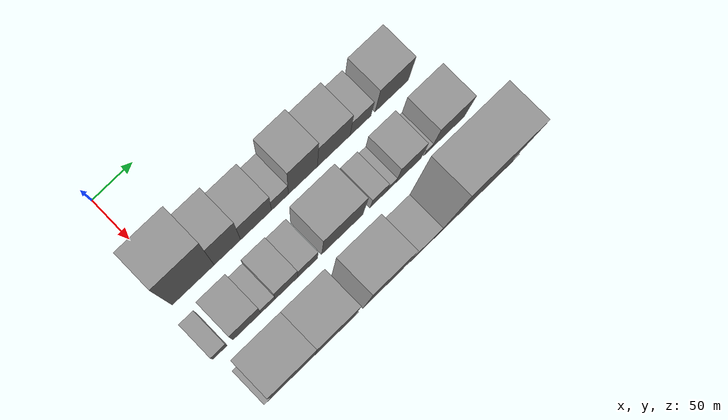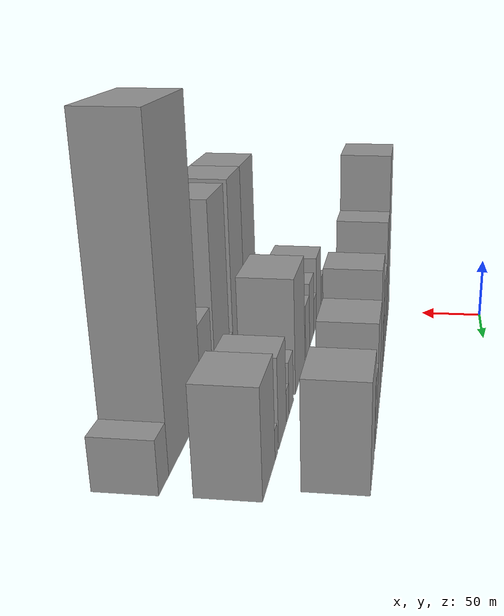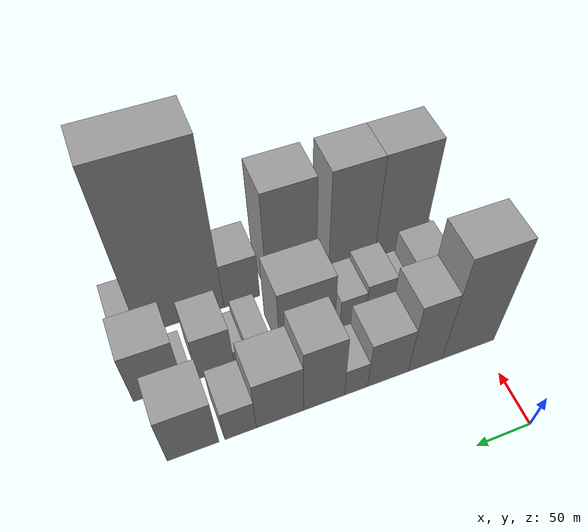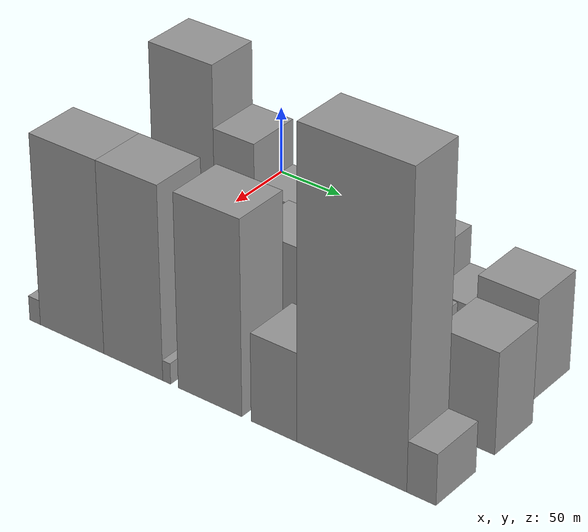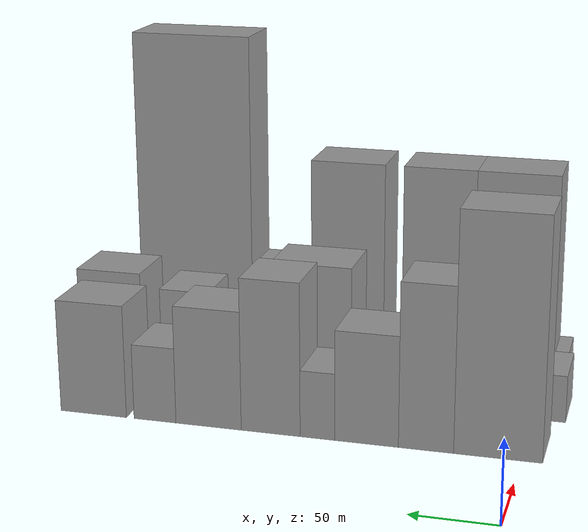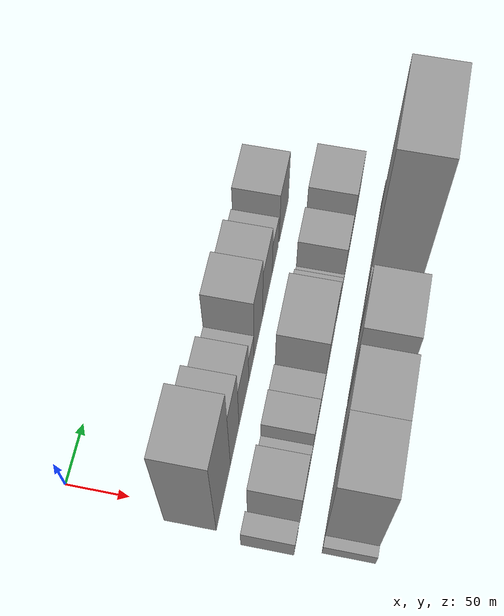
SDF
<sdf version="1.6">
 <world name="default">
  <model name="building_18">
   <static>1</static>
   <pose>100.0000 13.3755 0 0.000000 0.000000 0.000000</pose>
   <link name="link">
    <pose>0 0 73.50 0 0 0</pose>
    <collision name="collision"><geometry><box><size>40.0000 51.3061 147.0000</size></box></geometry></collision>
    <visual name="visual">
     <cast_shadows>0</cast_shadows>
     <geometry><box><size>40.0000 51.3061 147.0000</size></box></geometry>
     <material>
      <script>
       <uri>model://grey_wall/materials/scripts</uri>
       <uri>model://grey_wall/materials/textures</uri>
       <name>vrc/grey_wall</name>
      </script>
     </material>
    </visual>
   </link>
  </model>
  <model name="building_19">
   <static>1</static>
   <pose>100.0000 55.3227 0 0.000000 0.000000 0.000000</pose>
   <link name="link">
    <pose>0 0 51.00 0 0 0</pose>
    <collision name="collision"><geometry><box><size>40.0000 32.5883 102.0000</size></box></geometry></collision>
    <visual name="visual">
     <cast_shadows>0</cast_shadows>
     <geometry><box><size>40.0000 32.5883 102.0000</size></box></geometry>
     <material>
      <script>
       <uri>model://grey_wall/materials/scripts</uri>
       <uri>model://grey_wall/materials/textures</uri>
       <name>vrc/grey_wall</name>
      </script>
     </material>
    </visual>
   </link>
  </model>
  <model name="building_20">
   <static>1</static>
   <pose>100.0000 90.7704 0 0.000000 0.000000 0.000000</pose>
   <link name="link">
    <pose>0 0 34.50 0 0 0</pose>
    <collision name="collision"><geometry><box><size>40.0000 38.3070 69.0000</size></box></geometry></collision>
    <visual name="visual">
     <cast_shadows>0</cast_shadows>
     <geometry><box><size>40.0000 38.3070 69.0000</size></box></geometry>
     <material>
      <script>
       <uri>model://grey_wall/materials/scripts</uri>
       <uri>model://grey_wall/materials/textures</uri>
       <name>vrc/grey_wall</name>
      </script>
     </material>
    </visual>
   </link>
  </model>
  <model name="building_21">
   <static>1</static>
   <pose>100.0000 120.4790 0 0.000000 0.000000 0.000000</pose>
   <link name="link">
    <pose>0 0 21.00 0 0 0</pose>
    <collision name="collision"><geometry><box><size>40.0000 21.1102 42.0000</size></box></geometry></collision>
    <visual name="visual">
     <cast_shadows>0</cast_shadows>
     <geometry><box><size>40.0000 21.1102 42.0000</size></box></geometry>
     <material>
      <script>
       <uri>model://grey_wall/materials/scripts</uri>
       <uri>model://grey_wall/materials/textures</uri>
       <name>vrc/grey_wall</name>
      </script>
     </material>
    </visual>
   </link>
  </model>
  <model name="building_22">
   <static>1</static>
   <pose>100.0000 149.3170 0 0.000000 0.000000 0.000000</pose>
   <link name="link">
    <pose>0 0 48.00 0 0 0</pose>
    <collision name="collision"><geometry><box><size>40.0000 36.5658 96.0000</size></box></geometry></collision>
    <visual name="visual">
     <cast_shadows>0</cast_shadows>
     <geometry><box><size>40.0000 36.5658 96.0000</size></box></geometry>
     <material>
      <script>
       <uri>model://grey_wall/materials/scripts</uri>
       <uri>model://grey_wall/materials/textures</uri>
       <name>vrc/grey_wall</name>
      </script>
     </material>
    </visual>
   </link>
  </model>
  <model name="building_23">
   <static>1</static>
   <pose>100.0000 188.3108 0 0.000000 0.000000 0.000000</pose>
   <link name="link">
    <pose>0 0 37.50 0 0 0</pose>
    <collision name="collision"><geometry><box><size>40.0000 41.4217 75.0000</size></box></geometry></collision>
    <visual name="visual">
     <cast_shadows>0</cast_shadows>
     <geometry><box><size>40.0000 41.4217 75.0000</size></box></geometry>
     <material>
      <script>
       <uri>model://grey_wall/materials/scripts</uri>
       <uri>model://grey_wall/materials/textures</uri>
       <name>vrc/grey_wall</name>
      </script>
     </material>
    </visual>
   </link>
  </model>
  <model name="building_24">
   <static>1</static>
   <pose>100.0000 222.5513 0 0.000000 0.000000 0.000000</pose>
   <link name="link">
    <pose>0 0 24.00 0 0 0</pose>
    <collision name="collision"><geometry><box><size>40.0000 27.0594 48.0000</size></box></geometry></collision>
    <visual name="visual">
     <cast_shadows>0</cast_shadows>
     <geometry><box><size>40.0000 27.0594 48.0000</size></box></geometry>
     <material>
      <script>
       <uri>model://grey_wall/materials/scripts</uri>
       <uri>model://grey_wall/materials/textures</uri>
       <name>vrc/grey_wall</name>
      </script>
     </material>
    </visual>
   </link>
  </model>
  <model name="building_25">
   <static>1</static>
   <pose>100.0000 262.6222 0 0.000000 0.000000 0.000000</pose>
   <link name="link">
    <pose>0 0 36.00 0 0 0</pose>
    <collision name="collision"><geometry><box><size>40.0000 43.0822 72.0000</size></box></geometry></collision>
    <visual name="visual">
     <cast_shadows>0</cast_shadows>
     <geometry><box><size>40.0000 43.0822 72.0000</size></box></geometry>
     <material>
      <script>
       <uri>model://grey_wall/materials/scripts</uri>
       <uri>model://grey_wall/materials/textures</uri>
       <name>vrc/grey_wall</name>
      </script>
     </material>
    </visual>
   </link>
  </model>
  <model name="building_52">
   <static>1</static>
   <pose>160.0000 -10.4116 0 0.000000 0.000000 0.000000</pose>
   <link name="link">
    <pose>0 0 15.00 0 0 0</pose>
    <collision name="collision"><geometry><box><size>40.0000 17.4205 30.0000</size></box></geometry></collision>
    <visual name="visual">
     <cast_shadows>0</cast_shadows>
     <geometry><box><size>40.0000 17.4205 30.0000</size></box></geometry>
     <material>
      <script>
       <uri>model://grey_wall/materials/scripts</uri>
       <uri>model://grey_wall/materials/textures</uri>
       <name>vrc/grey_wall</name>
      </script>
     </material>
    </visual>
   </link>
  </model>
  <model name="building_53">
   <static>1</static>
   <pose>160.0000 22.2417 0 0.000000 0.000000 0.000000</pose>
   <link name="link">
    <pose>0 0 30.00 0 0 0</pose>
    <collision name="collision"><geometry><box><size>40.0000 33.8861 60.0000</size></box></geometry></collision>
    <visual name="visual">
     <cast_shadows>0</cast_shadows>
     <geometry><box><size>40.0000 33.8861 60.0000</size></box></geometry>
     <material>
      <script>
       <uri>model://grey_wall/materials/scripts</uri>
       <uri>model://grey_wall/materials/textures</uri>
       <name>vrc/grey_wall</name>
      </script>
     </material>
    </visual>
   </link>
  </model>
  <model name="building_54">
   <static>1</static>
   <pose>160.0000 48.0535 0 0.000000 0.000000 0.000000</pose>
   <link name="link">
    <pose>0 0 15.00 0 0 0</pose>
    <collision name="collision"><geometry><box><size>40.0000 17.7374 30.0000</size></box></geometry></collision>
    <visual name="visual">
     <cast_shadows>0</cast_shadows>
     <geometry><box><size>40.0000 17.7374 30.0000</size></box></geometry>
     <material>
      <script>
       <uri>model://grey_wall/materials/scripts</uri>
       <uri>model://grey_wall/materials/textures</uri>
       <name>vrc/grey_wall</name>
      </script>
     </material>
    </visual>
   </link>
  </model>
  <model name="building_55">
   <static>1</static>
   <pose>160.0000 70.8932 0 0.000000 0.000000 0.000000</pose>
   <link name="link">
    <pose>0 0 27.00 0 0 0</pose>
    <collision name="collision"><geometry><box><size>40.0000 27.9422 54.0000</size></box></geometry></collision>
    <visual name="visual">
     <cast_shadows>0</cast_shadows>
     <geometry><box><size>40.0000 27.9422 54.0000</size></box></geometry>
     <material>
      <script>
       <uri>model://grey_wall/materials/scripts</uri>
       <uri>model://grey_wall/materials/textures</uri>
       <name>vrc/grey_wall</name>
      </script>
     </material>
    </visual>
   </link>
  </model>
  <model name="building_56">
   <static>1</static>
   <pose>160.0000 97.1740 0 0.000000 0.000000 0.000000</pose>
   <link name="link">
    <pose>0 0 22.50 0 0 0</pose>
    <collision name="collision"><geometry><box><size>40.0000 24.6193 45.0000</size></box></geometry></collision>
    <visual name="visual">
     <cast_shadows>0</cast_shadows>
     <geometry><box><size>40.0000 24.6193 45.0000</size></box></geometry>
     <material>
      <script>
       <uri>model://grey_wall/materials/scripts</uri>
       <uri>model://grey_wall/materials/textures</uri>
       <name>vrc/grey_wall</name>
      </script>
     </material>
    </visual>
   </link>
  </model>
  <model name="building_57">
   <static>1</static>
   <pose>160.0000 140.4030 0 0.000000 0.000000 0.000000</pose>
   <link name="link">
    <pose>0 0 43.50 0 0 0</pose>
    <collision name="collision"><geometry><box><size>40.0000 51.8386 87.0000</size></box></geometry></collision>
    <visual name="visual">
     <cast_shadows>0</cast_shadows>
     <geometry><box><size>40.0000 51.8386 87.0000</size></box></geometry>
     <material>
      <script>
       <uri>model://grey_wall/materials/scripts</uri>
       <uri>model://grey_wall/materials/textures</uri>
       <name>vrc/grey_wall</name>
      </script>
     </material>
    </visual>
   </link>
  </model>
  <model name="building_58">
   <static>1</static>
   <pose>160.0000 185.8668 0 0.000000 0.000000 0.000000</pose>
   <link name="link">
    <pose>0 0 19.50 0 0 0</pose>
    <collision name="collision"><geometry><box><size>40.0000 21.0891 39.0000</size></box></geometry></collision>
    <visual name="visual">
     <cast_shadows>0</cast_shadows>
     <geometry><box><size>40.0000 21.0891 39.0000</size></box></geometry>
     <material>
      <script>
       <uri>model://grey_wall/materials/scripts</uri>
       <uri>model://grey_wall/materials/textures</uri>
       <name>vrc/grey_wall</name>
      </script>
     </material>
    </visual>
   </link>
  </model>
  <model name="building_59">
   <static>1</static>
   <pose>160.0000 202.0561 0 0.000000 0.000000 0.000000</pose>
   <link name="link">
    <pose>0 0 12.00 0 0 0</pose>
    <collision name="collision"><geometry><box><size>40.0000 11.2896 24.0000</size></box></geometry></collision>
    <visual name="visual">
     <cast_shadows>0</cast_shadows>
     <geometry><box><size>40.0000 11.2896 24.0000</size></box></geometry>
     <material>
      <script>
       <uri>model://grey_wall/materials/scripts</uri>
       <uri>model://grey_wall/materials/textures</uri>
       <name>vrc/grey_wall</name>
      </script>
     </material>
    </visual>
   </link>
  </model>
  <model name="building_60">
   <static>1</static>
   <pose>160.0000 224.0386 0 0.000000 0.000000 0.000000</pose>
   <link name="link">
    <pose>0 0 31.50 0 0 0</pose>
    <collision name="collision"><geometry><box><size>40.0000 32.6753 63.0000</size></box></geometry></collision>
    <visual name="visual">
     <cast_shadows>0</cast_shadows>
     <geometry><box><size>40.0000 32.6753 63.0000</size></box></geometry>
     <material>
      <script>
       <uri>model://grey_wall/materials/scripts</uri>
       <uri>model://grey_wall/materials/textures</uri>
       <name>vrc/grey_wall</name>
      </script>
     </material>
    </visual>
   </link>
  </model>
  <model name="building_61">
   <static>1</static>
   <pose>160.0000 248.9176 0 0.000000 0.000000 0.000000</pose>
   <link name="link">
    <pose>0 0 10.50 0 0 0</pose>
    <collision name="collision"><geometry><box><size>40.0000 9.0827 21.0000</size></box></geometry></collision>
    <visual name="visual">
     <cast_shadows>0</cast_shadows>
     <geometry><box><size>40.0000 9.0827 21.0000</size></box></geometry>
     <material>
      <script>
       <uri>model://grey_wall/materials/scripts</uri>
       <uri>model://grey_wall/materials/textures</uri>
       <name>vrc/grey_wall</name>
      </script>
     </material>
    </visual>
   </link>
  </model>
  <model name="building_62">
   <static>1</static>
   <pose>160.0000 274.9904 0 0.000000 0.000000 0.000000</pose>
   <link name="link">
    <pose>0 0 36.00 0 0 0</pose>
    <collision name="collision"><geometry><box><size>40.0000 43.0629 72.0000</size></box></geometry></collision>
    <visual name="visual">
     <cast_shadows>0</cast_shadows>
     <geometry><box><size>40.0000 43.0629 72.0000</size></box></geometry>
     <material>
      <script>
       <uri>model://grey_wall/materials/scripts</uri>
       <uri>model://grey_wall/materials/textures</uri>
       <name>vrc/grey_wall</name>
      </script>
     </material>
    </visual>
   </link>
  </model>
  <model name="building_91">
   <static>1</static>
   <pose>220.0000 -9.1065 0 0.000000 0.000000 0.000000</pose>
   <link name="link">
    <pose>0 0 9.00 0 0 0</pose>
    <collision name="collision"><geometry><box><size>40.0000 8.9025 18.0000</size></box></geometry></collision>
    <visual name="visual">
     <cast_shadows>0</cast_shadows>
     <geometry><box><size>40.0000 8.9025 18.0000</size></box></geometry>
     <material>
      <script>
       <uri>model://grey_wall/materials/scripts</uri>
       <uri>model://grey_wall/materials/textures</uri>
       <name>vrc/grey_wall</name>
      </script>
     </material>
    </visual>
   </link>
  </model>
  <model name="building_92">
   <static>1</static>
   <pose>220.0000 21.6102 0 0.000000 0.000000 0.000000</pose>
   <link name="link">
    <pose>0 0 69.00 0 0 0</pose>
    <collision name="collision"><geometry><box><size>40.0000 52.5310 138.0000</size></box></geometry></collision>
    <visual name="visual">
     <cast_shadows>0</cast_shadows>
     <geometry><box><size>40.0000 52.5310 138.0000</size></box></geometry>
     <material>
      <script>
       <uri>model://grey_wall/materials/scripts</uri>
       <uri>model://grey_wall/materials/textures</uri>
       <name>vrc/grey_wall</name>
      </script>
     </material>
    </visual>
   </link>
  </model>
  <model name="building_93">
   <static>1</static>
   <pose>220.0000 71.4628 0 0.000000 0.000000 0.000000</pose>
   <link name="link">
    <pose>0 0 69.00 0 0 0</pose>
    <collision name="collision"><geometry><box><size>40.0000 47.1743 138.0000</size></box></geometry></collision>
    <visual name="visual">
     <cast_shadows>0</cast_shadows>
     <geometry><box><size>40.0000 47.1743 138.0000</size></box></geometry>
     <material>
      <script>
       <uri>model://grey_wall/materials/scripts</uri>
       <uri>model://grey_wall/materials/textures</uri>
       <name>vrc/grey_wall</name>
      </script>
     </material>
    </visual>
   </link>
  </model>
  <model name="building_94">
   <static>1</static>
   <pose>220.0000 98.1466 0 0.000000 0.000000 0.000000</pose>
   <link name="link">
    <pose>0 0 7.50 0 0 0</pose>
    <collision name="collision"><geometry><box><size>40.0000 6.1933 15.0000</size></box></geometry></collision>
    <visual name="visual">
     <cast_shadows>0</cast_shadows>
     <geometry><box><size>40.0000 6.1933 15.0000</size></box></geometry>
     <material>
      <script>
       <uri>model://grey_wall/materials/scripts</uri>
       <uri>model://grey_wall/materials/textures</uri>
       <name>vrc/grey_wall</name>
      </script>
     </material>
    </visual>
   </link>
  </model>
  <model name="building_95">
   <static>1</static>
   <pose>220.0000 131.7582 0 0.000000 0.000000 0.000000</pose>
   <link name="link">
    <pose>0 0 69.00 0 0 0</pose>
    <collision name="collision"><geometry><box><size>40.0000 49.0299 138.0000</size></box></geometry></collision>
    <visual name="visual">
     <cast_shadows>0</cast_shadows>
     <geometry><box><size>40.0000 49.0299 138.0000</size></box></geometry>
     <material>
      <script>
       <uri>model://grey_wall/materials/scripts</uri>
       <uri>model://grey_wall/materials/textures</uri>
       <name>vrc/grey_wall</name>
      </script>
     </material>
    </visual>
   </link>
  </model>
  <model name="building_96">
   <static>1</static>
   <pose>220.0000 180.3369 0 0.000000 0.000000 0.000000</pose>
   <link name="link">
    <pose>0 0 31.50 0 0 0</pose>
    <collision name="collision"><geometry><box><size>40.0000 34.1276 63.0000</size></box></geometry></collision>
    <visual name="visual">
     <cast_shadows>0</cast_shadows>
     <geometry><box><size>40.0000 34.1276 63.0000</size></box></geometry>
     <material>
      <script>
       <uri>model://grey_wall/materials/scripts</uri>
       <uri>model://grey_wall/materials/textures</uri>
       <name>vrc/grey_wall</name>
      </script>
     </material>
    </visual>
   </link>
  </model>
  <model name="building_97">
   <static>1</static>
   <pose>220.0000 236.9526 0 0.000000 0.000000 0.000000</pose>
   <link name="link">
    <pose>0 0 108.00 0 0 0</pose>
    <collision name="collision"><geometry><box><size>40.0000 79.1038 216.0000</size></box></geometry></collision>
    <visual name="visual">
     <cast_shadows>0</cast_shadows>
     <geometry><box><size>40.0000 79.1038 216.0000</size></box></geometry>
     <material>
      <script>
       <uri>model://grey_wall/materials/scripts</uri>
       <uri>model://grey_wall/materials/textures</uri>
       <name>vrc/grey_wall</name>
      </script>
     </material>
    </visual>
   </link>
  </model>
  <model name="building_98">
   <static>1</static>
   <pose>220.0000 286.7004 0 0.000000 0.000000 0.000000</pose>
   <link name="link">
    <pose>0 0 18.00 0 0 0</pose>
    <collision name="collision"><geometry><box><size>40.0000 20.3917 36.0000</size></box></geometry></collision>
    <visual name="visual">
     <cast_shadows>0</cast_shadows>
     <geometry><box><size>40.0000 20.3917 36.0000</size></box></geometry>
     <material>
      <script>
       <uri>model://grey_wall/materials/scripts</uri>
       <uri>model://grey_wall/materials/textures</uri>
       <name>vrc/grey_wall</name>
      </script>
     </material>
    </visual>
   </link>
  </model>
 </world>
</sdf>
